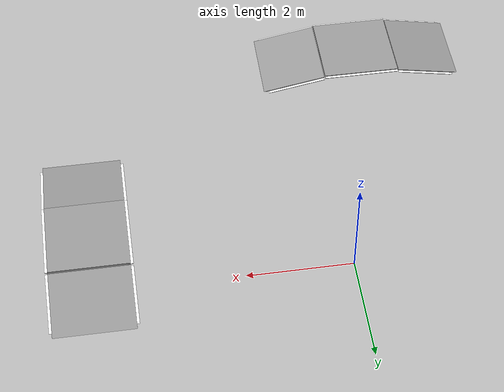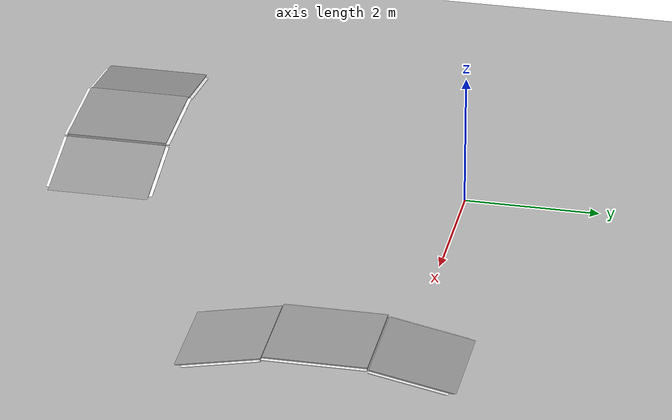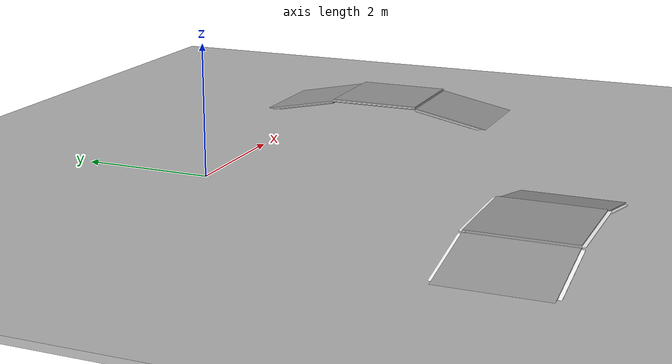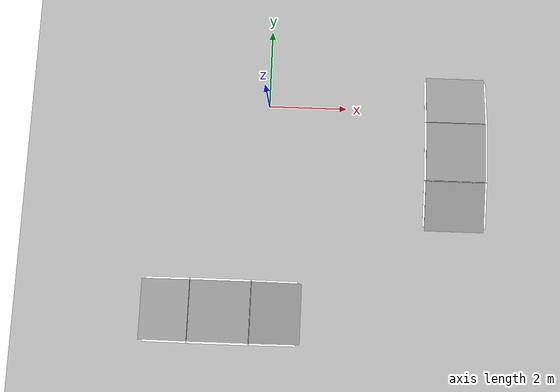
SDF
<?xml version="1.0" ?>
<sdf version="1.6">
  <world name="ramp_tester">

    <physics type="ode">
      <max_step_size>0.001</max_step_size>
      <real_time_update_rate>1000</real_time_update_rate>
    </physics>

    <light type="directional" name="sun">
      <cast_shadows>true</cast_shadows>
      <pose>0 0 10 0 0 0</pose>
      <diffuse>1 1 1 1</diffuse>
      <specular>0.2 0.2 0.2 1</specular>
      <direction>-0.5 0.1 -0.9</direction>
    </light>

    <include>
      <uri>model://floor</uri>
      <pose>0 0 0 0 0 0</pose>
    </include>

    <gui fullscreen='0'>
      <camera name='user_camera'>
        <pose>0 -10 15 0 0.8 1.57</pose>
        <view_controller>orbit</view_controller>
      </camera>
    </gui>

    <!--######################ramps##############################-->
    <include>
      <uri>model://ramp</uri>
      <name>ramp_1</name>
      <pose>-1 -5.3 0 0 0 0</pose>
    </include>

    <include>
      <uri>model://ramp</uri>
      <name>ramp_2</name>
      <pose>4.8 -1.1 0 0 0 -1.5708</pose>
    </include>

  </world>
</sdf>

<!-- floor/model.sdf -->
<sdf version="1.6">
  <model name="custom_course">
    <static>true</static>
    <link name="link">
      <collision name="collision">
        <geometry>
          <box>
            <size>30 30 0.1</size> <!-- PUT YOUR COURSE SIZE HERE IN METERS -->
          </box>
        </geometry>
      </collision>
      <visual name="visual">
        <geometry>
          <box>
            <size>30 30 0.1</size> <!-- PUT YOUR COURSE SIZE HERE IN METERS -->
          </box>
        </geometry>
        <material>
          <script>
            <uri>model://floor/materials/scripts</uri>
            <uri>model://floor/materials/textures</uri>
            <name>CustomCourse/Diffuse</name>
          </script>
        </material>
      </visual>
    </link>
  </model>
</sdf>

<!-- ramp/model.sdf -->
<sdf version="1.8">
  <model name="ramp">
    <static>true</static>

    <!-- Up slope -->
    <link name="up_slope">
      <pose>-1.5 0 0.125 0 -0.1963 0</pose>
      <collision name="collision">
        <geometry><box><size>1.5 1.5 0.05</size></box></geometry>
        <surface>
          <friction><ode><mu>1.0</mu><mu2>1.0</mu2></ode></friction>
        </surface>
      </collision>
      <visual name="visual">
        <geometry><box><size>1.5 1.5 0.05</size></box></geometry>
        <material>
          <ambient>0.5 0.5 0.5 1</ambient>
          <diffuse>0.6 0.6 0.6 1</diffuse>
        </material>
      </visual>
    </link>

    <!-- Up slope lane lines -->
    <link name="up_slope_lane_left">
      <pose>-1.5 0.75 0.125 0 -0.1963 0</pose>
      <visual name="visual">
        <geometry><box><size>1.5 0.1 0.01</size></box></geometry>
        <material>
          <ambient>1 1 1 1</ambient>
          <diffuse>1 1 1 1</diffuse>
          <emissive>1 1 1 1</emissive>
        </material>
      </visual>
    </link>
    <link name="up_slope_lane_right">
      <pose>-1.5 -0.75 0.125 0 -0.1963 0</pose>
      <visual name="visual">
        <geometry><box><size>1.5 0.1 0.01</size></box></geometry>
        <material>
          <ambient>1 1 1 1</ambient>
          <diffuse>1 1 1 1</diffuse>
          <emissive>1 1 1 1</emissive>
        </material>
      </visual>
    </link>

    <!-- Flat top -->
    <link name="flat_top">
      <pose>0 0 0.3 0 0 0</pose>
      <collision name="collision">
        <geometry><box><size>1.5 1.5 0.05</size></box></geometry>
        <surface>
          <friction><ode><mu>1.0</mu><mu2>1.0</mu2></ode></friction>
        </surface>
      </collision>
      <visual name="visual">
        <geometry><box><size>1.5 1.5 0.05</size></box></geometry>
        <material>
          <ambient>0.5 0.5 0.5 1</ambient>
          <diffuse>0.6 0.6 0.6 1</diffuse>
        </material>
      </visual>
    </link>

    <!-- Flat top lane lines -->
    <link name="flat_top_lane_left">
      <pose>0 0.75 0.3 0 0 0</pose>
      <visual name="visual">
        <geometry><box><size>1.5 0.1 0.01</size></box></geometry>
        <material>
          <ambient>1 1 1 1</ambient>
          <diffuse>1 1 1 1</diffuse>
          <emissive>1 1 1 1</emissive>
        </material>
      </visual>
    </link>
    <link name="flat_top_lane_right">
      <pose>0 -0.75 0.3 0 0 0</pose>
      <visual name="visual">
        <geometry><box><size>1.5 0.1 0.01</size></box></geometry>
        <material>
          <ambient>1 1 1 1</ambient>
          <diffuse>1 1 1 1</diffuse>
          <emissive>1 1 1 1</emissive>
        </material>
      </visual>
    </link>

    <!-- Down slope -->
    <link name="down_slope">
      <pose>1.5 0 0.125 0 0.1963 0</pose>
      <collision name="collision">
        <geometry><box><size>1.5 1.5 0.05</size></box></geometry>
        <surface>
          <friction><ode><mu>1.0</mu><mu2>1.0</mu2></ode></friction>
        </surface>
      </collision>
      <visual name="visual">
        <geometry><box><size>1.5 1.5 0.05</size></box></geometry>
        <material>
          <ambient>0.5 0.5 0.5 1</ambient>
          <diffuse>0.6 0.6 0.6 1</diffuse>
        </material>
      </visual>
    </link>

    <!-- Down slope lane lines -->
    <link name="down_slope_lane_left">
      <pose>1.5 0.75 0.125 0 0.1963 0</pose>
      <visual name="visual">
        <geometry><box><size>1.5 0.1 0.01</size></box></geometry>
        <material>
          <ambient>1 1 1 1</ambient>
          <diffuse>1 1 1 1</diffuse>
          <emissive>1 1 1 1</emissive>
        </material>
      </visual>
    </link>
    <link name="down_slope_lane_right">
      <pose>1.5 -0.75 0.125 0 0.1963 0</pose>
      <visual name="visual">
        <geometry><box><size>1.5 0.1 0.01</size></box></geometry>
        <material>
          <ambient>1 1 1 1</ambient>
          <diffuse>1 1 1 1</diffuse>
          <emissive>1 1 1 1</emissive>
        </material>
      </visual>
    </link>

  </model>
</sdf>
